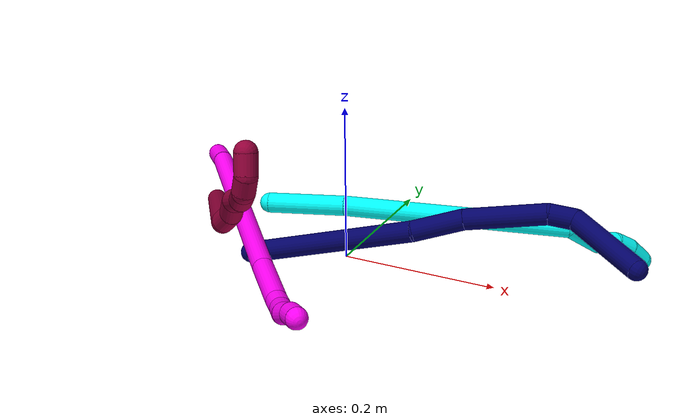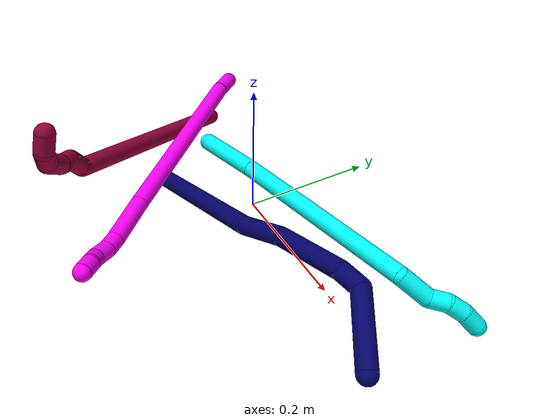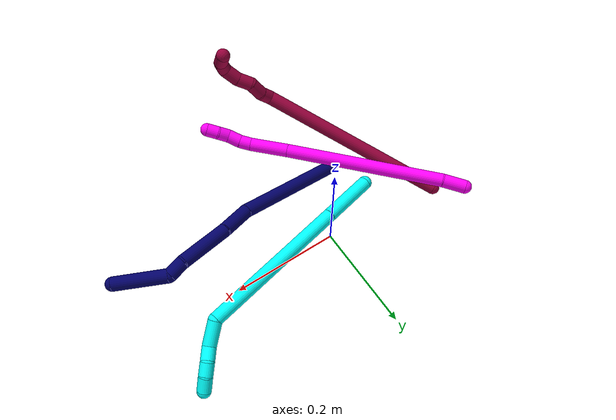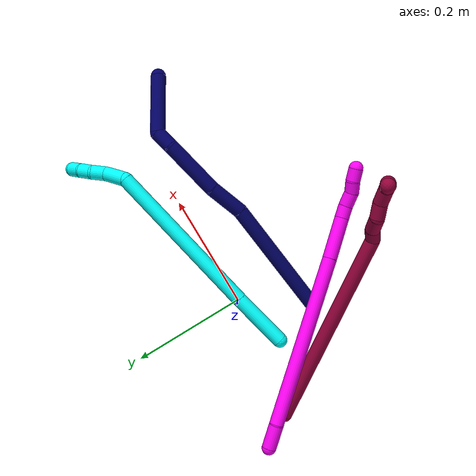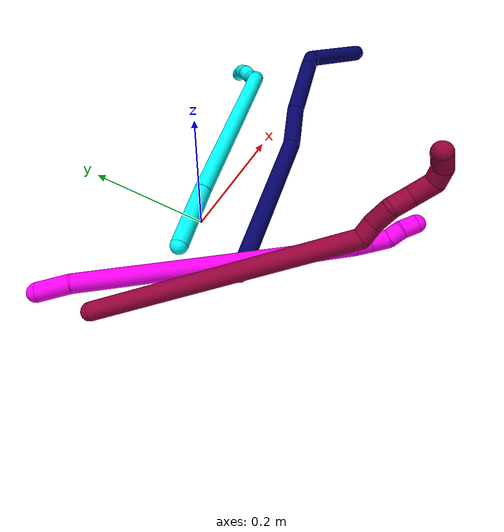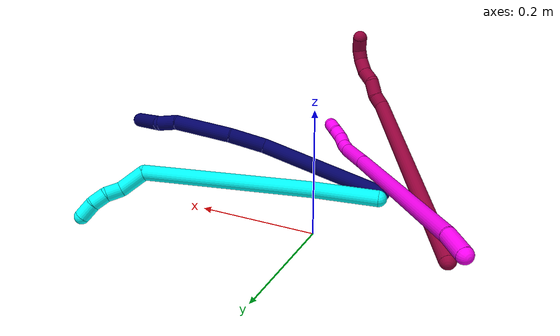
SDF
<sdf version="1.7">
 <world name="default">
  <model name="3">
   <static>0</static>
   <link name="3">
    <collision name="collision-cylinder-e_1_1_4">
     <pose>0.028717 0.012816 0.037251 -0.331357 0.629902 -0.108846</pose>
     <geometry><cylinder><radius>0.0125</radius><length>0.097499</length></cylinder></geometry>
     <surface>
      <friction><ode><mu>1.16</mu><mu2>1.16</mu2><slip1>0</slip1><slip2>0</slip2></ode></friction>
      <contact><ode><kp>1e+06</kp><kd>1</kd><max_vel>0</max_vel><min_depth>0.001</min_depth></ode></contact>
     </surface>
    </collision>
    <visual name="visual-cylinder-e_1_1_4">
     <pose>0.028717 0.012816 0.037251 -0.331357 0.629902 -0.108846</pose>
     <geometry><cylinder><radius>0.0125</radius><length>0.097499</length></cylinder></geometry>
     <material><ambient>0.003922 1 0.996078 1</ambient></material>
    </visual>
    <collision name="collision-cylinder-e_2_4_5">
     <pose>0.137496 0.068975 0.18062 -0.387766 0.609688 -0.123407</pose>
     <geometry><cylinder><radius>0.0125</radius><length>0.279641</length></cylinder></geometry>
     <surface>
      <friction><ode><mu>1.16</mu><mu2>1.16</mu2><slip1>0</slip1><slip2>0</slip2></ode></friction>
      <contact><ode><kp>1e+06</kp><kd>1</kd><max_vel>0</max_vel><min_depth>0.001</min_depth></ode></contact>
     </surface>
    </collision>
    <visual name="visual-cylinder-e_2_4_5">
     <pose>0.137496 0.068975 0.18062 -0.387766 0.609688 -0.123407</pose>
     <geometry><cylinder><radius>0.0125</radius><length>0.279641</length></cylinder></geometry>
     <material><ambient>0.003922 1 0.996078 1</ambient></material>
    </visual>
    <collision name="collision-cylinder-e_3_5_6">
     <pose>0.214493 0.122273 0.307121 -0.454287 -0.134363 0.0311</pose>
     <geometry><cylinder><radius>0.0125</radius><length>0.04578</length></cylinder></geometry>
     <surface>
      <friction><ode><mu>1.16</mu><mu2>1.16</mu2><slip1>0</slip1><slip2>0</slip2></ode></friction>
      <contact><ode><kp>1e+06</kp><kd>1</kd><max_vel>0</max_vel><min_depth>0.001</min_depth></ode></contact>
     </surface>
    </collision>
    <visual name="visual-cylinder-e_3_5_6">
     <pose>0.214493 0.122273 0.307121 -0.454287 -0.134363 0.0311</pose>
     <geometry><cylinder><radius>0.0125</radius><length>0.04578</length></cylinder></geometry>
     <material><ambient>0.003922 1 0.996078 1</ambient></material>
    </visual>
    <collision name="collision-cylinder-e_4_6_7">
     <pose>0.211336 0.132473 0.340298 -0.019214 -0.007084 6.8e-05</pose>
     <geometry><cylinder><radius>0.0125</radius><length>0.025595</length></cylinder></geometry>
     <surface>
      <friction><ode><mu>1.16</mu><mu2>1.16</mu2><slip1>0</slip1><slip2>0</slip2></ode></friction>
      <contact><ode><kp>1e+06</kp><kd>1</kd><max_vel>0</max_vel><min_depth>0.001</min_depth></ode></contact>
     </surface>
    </collision>
    <visual name="visual-cylinder-e_4_6_7">
     <pose>0.211336 0.132473 0.340298 -0.019214 -0.007084 6.8e-05</pose>
     <geometry><cylinder><radius>0.0125</radius><length>0.025595</length></cylinder></geometry>
     <material><ambient>0.003922 1 0.996078 1</ambient></material>
    </visual>
    <collision name="collision-cylinder-e_5_7_8">
     <pose>0.20909 0.136688 0.364354 -0.338872 -0.178583 0.03063</pose>
     <geometry><cylinder><radius>0.0125</radius><length>0.024266</length></cylinder></geometry>
     <surface>
      <friction><ode><mu>1.16</mu><mu2>1.16</mu2><slip1>0</slip1><slip2>0</slip2></ode></friction>
      <contact><ode><kp>1e+06</kp><kd>1</kd><max_vel>0</max_vel><min_depth>0.001</min_depth></ode></contact>
     </surface>
    </collision>
    <visual name="visual-cylinder-e_5_7_8">
     <pose>0.20909 0.136688 0.364354 -0.338872 -0.178583 0.03063</pose>
     <geometry><cylinder><radius>0.0125</radius><length>0.024266</length></cylinder></geometry>
     <material><ambient>0.003922 1 0.996078 1</ambient></material>
    </visual>
    <collision name="collision-cylinder-e_6_8_2">
     <pose>0.20262 0.147661 0.386457 -0.573592 -0.32263 0.095913</pose>
     <geometry><cylinder><radius>0.0125</radius><length>0.027219</length></cylinder></geometry>
     <surface>
      <friction><ode><mu>1.16</mu><mu2>1.16</mu2><slip1>0</slip1><slip2>0</slip2></ode></friction>
      <contact><ode><kp>1e+06</kp><kd>1</kd><max_vel>0</max_vel><min_depth>0.001</min_depth></ode></contact>
     </surface>
    </collision>
    <visual name="visual-cylinder-e_6_8_2">
     <pose>0.20262 0.147661 0.386457 -0.573592 -0.32263 0.095913</pose>
     <geometry><cylinder><radius>0.0125</radius><length>0.027219</length></cylinder></geometry>
     <material><ambient>0.003922 1 0.996078 1</ambient></material>
    </visual>
    <collision name="collision-sphere-2">
     <pose>0.198305 0.154665 0.397299 0 -0 0</pose>
     <geometry><sphere><radius>0.0125</radius></sphere></geometry>
     <surface>
      <friction><ode><mu>1.16</mu><mu2>1.16</mu2><slip1>0</slip1><slip2>0</slip2></ode></friction>
      <contact><ode><kp>1e+06</kp><kd>1</kd><max_vel>0</max_vel><min_depth>0.001</min_depth></ode></contact>
     </surface>
    </collision>
    <visual name="visual-sphere-2">
     <pose>0.198305 0.154665 0.397299 0 -0 0</pose>
     <geometry><sphere><radius>0.0125</radius></sphere></geometry>
     <material><ambient>0.003922 1 0.996078 1</ambient></material>
    </visual>
    <collision name="collision-sphere-4">
     <pose>0.057433 0.025632 0.074501 0 -0 0</pose>
     <geometry><sphere><radius>0.0125</radius></sphere></geometry>
     <surface>
      <friction><ode><mu>1.16</mu><mu2>1.16</mu2><slip1>0</slip1><slip2>0</slip2></ode></friction>
      <contact><ode><kp>1e+06</kp><kd>1</kd><max_vel>0</max_vel><min_depth>0.001</min_depth></ode></contact>
     </surface>
    </collision>
    <visual name="visual-sphere-4">
     <pose>0.057433 0.025632 0.074501 0 -0 0</pose>
     <geometry><sphere><radius>0.0125</radius></sphere></geometry>
     <material><ambient>0.003922 1 0.996078 1</ambient></material>
    </visual>
    <collision name="collision-sphere-1">
     <geometry><sphere><radius>0.0125</radius></sphere></geometry>
     <surface>
      <friction><ode><mu>1.16</mu><mu2>1.16</mu2><slip1>0</slip1><slip2>0</slip2></ode></friction>
      <contact><ode><kp>1e+06</kp><kd>1</kd><max_vel>0</max_vel><min_depth>0.001</min_depth></ode></contact>
     </surface>
    </collision>
    <visual name="visual-sphere-1">
     <geometry><sphere><radius>0.0125</radius></sphere></geometry>
     <material><ambient>0.003922 1 0.996078 1</ambient></material>
    </visual>
    <collision name="collision-sphere-8">
     <pose>0.206935 0.140657 0.375615 0 -0 0</pose>
     <geometry><sphere><radius>0.0125</radius></sphere></geometry>
     <surface>
      <friction><ode><mu>1.16</mu><mu2>1.16</mu2><slip1>0</slip1><slip2>0</slip2></ode></friction>
      <contact><ode><kp>1e+06</kp><kd>1</kd><max_vel>0</max_vel><min_depth>0.001</min_depth></ode></contact>
     </surface>
    </collision>
    <visual name="visual-sphere-8">
     <pose>0.206935 0.140657 0.375615 0 -0 0</pose>
     <geometry><sphere><radius>0.0125</radius></sphere></geometry>
     <material><ambient>0.003922 1 0.996078 1</ambient></material>
    </visual>
    <collision name="collision-sphere-5">
     <pose>0.217559 0.112319 0.286738 0 -0 0</pose>
     <geometry><sphere><radius>0.0125</radius></sphere></geometry>
     <surface>
      <friction><ode><mu>1.16</mu><mu2>1.16</mu2><slip1>0</slip1><slip2>0</slip2></ode></friction>
      <contact><ode><kp>1e+06</kp><kd>1</kd><max_vel>0</max_vel><min_depth>0.001</min_depth></ode></contact>
     </surface>
    </collision>
    <visual name="visual-sphere-5">
     <pose>0.217559 0.112319 0.286738 0 -0 0</pose>
     <geometry><sphere><radius>0.0125</radius></sphere></geometry>
     <material><ambient>0.003922 1 0.996078 1</ambient></material>
    </visual>
    <collision name="collision-sphere-6">
     <pose>0.211426 0.132227 0.327503 0 -0 0</pose>
     <geometry><sphere><radius>0.0125</radius></sphere></geometry>
     <surface>
      <friction><ode><mu>1.16</mu><mu2>1.16</mu2><slip1>0</slip1><slip2>0</slip2></ode></friction>
      <contact><ode><kp>1e+06</kp><kd>1</kd><max_vel>0</max_vel><min_depth>0.001</min_depth></ode></contact>
     </surface>
    </collision>
    <visual name="visual-sphere-6">
     <pose>0.211426 0.132227 0.327503 0 -0 0</pose>
     <geometry><sphere><radius>0.0125</radius></sphere></geometry>
     <material><ambient>0.003922 1 0.996078 1</ambient></material>
    </visual>
    <collision name="collision-sphere-7">
     <pose>0.211245 0.132719 0.353093 0 -0 0</pose>
     <geometry><sphere><radius>0.0125</radius></sphere></geometry>
     <surface>
      <friction><ode><mu>1.16</mu><mu2>1.16</mu2><slip1>0</slip1><slip2>0</slip2></ode></friction>
      <contact><ode><kp>1e+06</kp><kd>1</kd><max_vel>0</max_vel><min_depth>0.001</min_depth></ode></contact>
     </surface>
    </collision>
    <visual name="visual-sphere-7">
     <pose>0.211245 0.132719 0.353093 0 -0 0</pose>
     <geometry><sphere><radius>0.0125</radius></sphere></geometry>
     <material><ambient>0.003922 1 0.996078 1</ambient></material>
    </visual>
    <inertial>
     <pose>0.134134 0.073724 0.192542 0 -0 0</pose>
     <mass>0.5</mass>
     <inertia>
      <ixx>0.001397</ixx>
      <ixy>0</ixy>
      <ixz>0</ixz>
      <iyy>0.001647</iyy>
      <iyz>0</iyz>
      <izz>-0.00166</izz>
     </inertia>
    </inertial>
   </link>
   <pose>-0.093141 -0.02771 0.068422 -1.76573 -0.667259 -0.538743</pose>
  </model>
  <model name="7">
   <static>0</static>
   <link name="7">
    <collision name="collision-cylinder-e_1_1_4">
     <pose>-0.011365 0.061956 0.085404 -0.627602 -0.107305 0.034853</pose>
     <geometry><cylinder><radius>0.0125</radius><length>0.212241</length></cylinder></geometry>
     <surface>
      <friction><ode><mu>1.16</mu><mu2>1.16</mu2><slip1>0</slip1><slip2>0</slip2></ode></friction>
      <contact><ode><kp>1e+06</kp><kd>1</kd><max_vel>0</max_vel><min_depth>0.001</min_depth></ode></contact>
     </surface>
    </collision>
    <visual name="visual-cylinder-e_1_1_4">
     <pose>-0.011365 0.061956 0.085404 -0.627602 -0.107305 0.034853</pose>
     <geometry><cylinder><radius>0.0125</radius><length>0.212241</length></cylinder></geometry>
     <material><ambient>0.003922 0 0.403922 1</ambient></material>
    </visual>
    <collision name="collision-cylinder-e_2_4_5">
     <pose>-0.02033 0.14497 0.192544 -0.769532 0.079159 -0.032069</pose>
     <geometry><cylinder><radius>0.0125</radius><length>0.060718</length></cylinder></geometry>
     <surface>
      <friction><ode><mu>1.16</mu><mu2>1.16</mu2><slip1>0</slip1><slip2>0</slip2></ode></friction>
      <contact><ode><kp>1e+06</kp><kd>1</kd><max_vel>0</max_vel><min_depth>0.001</min_depth></ode></contact>
     </surface>
    </collision>
    <visual name="visual-cylinder-e_2_4_5">
     <pose>-0.02033 0.14497 0.192544 -0.769532 0.079159 -0.032069</pose>
     <geometry><cylinder><radius>0.0125</radius><length>0.060718</length></cylinder></geometry>
     <material><ambient>0.003922 0 0.403922 1</ambient></material>
    </visual>
    <collision name="collision-cylinder-e_3_5_6">
     <pose>-0.015847 0.192996 0.254195 -0.594207 0.043216 -0.013233</pose>
     <geometry><cylinder><radius>0.0125</radius><length>0.096432</length></cylinder></geometry>
     <surface>
      <friction><ode><mu>1.16</mu><mu2>1.16</mu2><slip1>0</slip1><slip2>0</slip2></ode></friction>
      <contact><ode><kp>1e+06</kp><kd>1</kd><max_vel>0</max_vel><min_depth>0.001</min_depth></ode></contact>
     </surface>
    </collision>
    <visual name="visual-cylinder-e_3_5_6">
     <pose>-0.015847 0.192996 0.254195 -0.594207 0.043216 -0.013233</pose>
     <geometry><cylinder><radius>0.0125</radius><length>0.096432</length></cylinder></geometry>
     <material><ambient>0.003922 0 0.403922 1</ambient></material>
    </visual>
    <collision name="collision-cylinder-e_4_6_7">
     <pose>-0.010388 0.225173 0.308257 -0.352711 0.220263 -0.039407</pose>
     <geometry><cylinder><radius>0.0125</radius><length>0.030899</length></cylinder></geometry>
     <surface>
      <friction><ode><mu>1.16</mu><mu2>1.16</mu2><slip1>0</slip1><slip2>0</slip2></ode></friction>
      <contact><ode><kp>1e+06</kp><kd>1</kd><max_vel>0</max_vel><min_depth>0.001</min_depth></ode></contact>
     </surface>
    </collision>
    <visual name="visual-cylinder-e_4_6_7">
     <pose>-0.010388 0.225173 0.308257 -0.352711 0.220263 -0.039407</pose>
     <geometry><cylinder><radius>0.0125</radius><length>0.030899</length></cylinder></geometry>
     <material><ambient>0.003922 0 0.403922 1</ambient></material>
    </visual>
    <collision name="collision-cylinder-e_5_7_2">
     <pose>-0.024043 0.222137 0.368531 0.176849 -0.348627 -0.031222</pose>
     <geometry><cylinder><radius>0.0125</radius><length>0.09971</length></cylinder></geometry>
     <surface>
      <friction><ode><mu>1.16</mu><mu2>1.16</mu2><slip1>0</slip1><slip2>0</slip2></ode></friction>
      <contact><ode><kp>1e+06</kp><kd>1</kd><max_vel>0</max_vel><min_depth>0.001</min_depth></ode></contact>
     </surface>
    </collision>
    <visual name="visual-cylinder-e_5_7_2">
     <pose>-0.024043 0.222137 0.368531 0.176849 -0.348627 -0.031222</pose>
     <geometry><cylinder><radius>0.0125</radius><length>0.09971</length></cylinder></geometry>
     <material><ambient>0.003922 0 0.403922 1</ambient></material>
    </visual>
    <collision name="collision-sphere-2">
     <pose>-0.041074 0.213894 0.414656 0 -0 0</pose>
     <geometry><sphere><radius>0.0125</radius></sphere></geometry>
     <surface>
      <friction><ode><mu>1.16</mu><mu2>1.16</mu2><slip1>0</slip1><slip2>0</slip2></ode></friction>
      <contact><ode><kp>1e+06</kp><kd>1</kd><max_vel>0</max_vel><min_depth>0.001</min_depth></ode></contact>
     </surface>
    </collision>
    <visual name="visual-sphere-2">
     <pose>-0.041074 0.213894 0.414656 0 -0 0</pose>
     <geometry><sphere><radius>0.0125</radius></sphere></geometry>
     <material><ambient>0.003922 0 0.403922 1</ambient></material>
    </visual>
    <collision name="collision-sphere-7">
     <pose>-0.007013 0.23038 0.322405 0 -0 0</pose>
     <geometry><sphere><radius>0.0125</radius></sphere></geometry>
     <surface>
      <friction><ode><mu>1.16</mu><mu2>1.16</mu2><slip1>0</slip1><slip2>0</slip2></ode></friction>
      <contact><ode><kp>1e+06</kp><kd>1</kd><max_vel>0</max_vel><min_depth>0.001</min_depth></ode></contact>
     </surface>
    </collision>
    <visual name="visual-sphere-7">
     <pose>-0.007013 0.23038 0.322405 0 -0 0</pose>
     <geometry><sphere><radius>0.0125</radius></sphere></geometry>
     <material><ambient>0.003922 0 0.403922 1</ambient></material>
    </visual>
    <collision name="collision-sphere-6">
     <pose>-0.013763 0.219965 0.294109 0 -0 0</pose>
     <geometry><sphere><radius>0.0125</radius></sphere></geometry>
     <surface>
      <friction><ode><mu>1.16</mu><mu2>1.16</mu2><slip1>0</slip1><slip2>0</slip2></ode></friction>
      <contact><ode><kp>1e+06</kp><kd>1</kd><max_vel>0</max_vel><min_depth>0.001</min_depth></ode></contact>
     </surface>
    </collision>
    <visual name="visual-sphere-6">
     <pose>-0.013763 0.219965 0.294109 0 -0 0</pose>
     <geometry><sphere><radius>0.0125</radius></sphere></geometry>
     <material><ambient>0.003922 0 0.403922 1</ambient></material>
    </visual>
    <collision name="collision-sphere-5">
     <pose>-0.01793 0.166027 0.214281 0 -0 0</pose>
     <geometry><sphere><radius>0.0125</radius></sphere></geometry>
     <surface>
      <friction><ode><mu>1.16</mu><mu2>1.16</mu2><slip1>0</slip1><slip2>0</slip2></ode></friction>
      <contact><ode><kp>1e+06</kp><kd>1</kd><max_vel>0</max_vel><min_depth>0.001</min_depth></ode></contact>
     </surface>
    </collision>
    <visual name="visual-sphere-5">
     <pose>-0.01793 0.166027 0.214281 0 -0 0</pose>
     <geometry><sphere><radius>0.0125</radius></sphere></geometry>
     <material><ambient>0.003922 0 0.403922 1</ambient></material>
    </visual>
    <collision name="collision-sphere-1">
     <geometry><sphere><radius>0.0125</radius></sphere></geometry>
     <surface>
      <friction><ode><mu>1.16</mu><mu2>1.16</mu2><slip1>0</slip1><slip2>0</slip2></ode></friction>
      <contact><ode><kp>1e+06</kp><kd>1</kd><max_vel>0</max_vel><min_depth>0.001</min_depth></ode></contact>
     </surface>
    </collision>
    <visual name="visual-sphere-1">
     <geometry><sphere><radius>0.0125</radius></sphere></geometry>
     <material><ambient>0.003922 0 0.403922 1</ambient></material>
    </visual>
    <collision name="collision-sphere-4">
     <pose>-0.022731 0.123912 0.170808 0 -0 0</pose>
     <geometry><sphere><radius>0.0125</radius></sphere></geometry>
     <surface>
      <friction><ode><mu>1.16</mu><mu2>1.16</mu2><slip1>0</slip1><slip2>0</slip2></ode></friction>
      <contact><ode><kp>1e+06</kp><kd>1</kd><max_vel>0</max_vel><min_depth>0.001</min_depth></ode></contact>
     </surface>
    </collision>
    <visual name="visual-sphere-4">
     <pose>-0.022731 0.123912 0.170808 0 -0 0</pose>
     <geometry><sphere><radius>0.0125</radius></sphere></geometry>
     <material><ambient>0.003922 0 0.403922 1</ambient></material>
    </visual>
    <inertial>
     <pose>-0.015786 0.13934 0.201201 0 -0 0</pose>
     <mass>0.5</mass>
     <inertia>
      <ixx>0.001004</ixx>
      <ixy>0</ixy>
      <ixz>0</ixz>
      <iyy>0.000862</iyy>
      <iyz>0</iyz>
      <izz>-0.000373</izz>
     </inertia>
    </inertial>
   </link>
   <pose>-0.074478 -0.107711 0.038041 1.93527 0.58924 1.63742</pose>
  </model>
  <model name="8">
   <static>0</static>
   <link name="8">
    <collision name="collision-cylinder-e_1_1_4">
     <pose>0.012298 -0.061552 0.163704 0.35964 0.070201 0.012766</pose>
     <geometry><cylinder><radius>0.0125</radius><length>0.350651</length></cylinder></geometry>
     <surface>
      <friction><ode><mu>1.16</mu><mu2>1.16</mu2><slip1>0</slip1><slip2>0</slip2></ode></friction>
      <contact><ode><kp>1e+06</kp><kd>1</kd><max_vel>0</max_vel><min_depth>0.001</min_depth></ode></contact>
     </surface>
    </collision>
    <visual name="visual-cylinder-e_1_1_4">
     <pose>0.012298 -0.061552 0.163704 0.35964 0.070201 0.012766</pose>
     <geometry><cylinder><radius>0.0125</radius><length>0.350651</length></cylinder></geometry>
     <material><ambient>0.584314 0 0.227451 1</ambient></material>
    </visual>
    <collision name="collision-cylinder-e_2_4_5">
     <pose>0.028389 -0.131385 0.333299 0.952578 0.357189 0.185724</pose>
     <geometry><cylinder><radius>0.0125</radius><length>0.021696</length></cylinder></geometry>
     <surface>
      <friction><ode><mu>1.16</mu><mu2>1.16</mu2><slip1>0</slip1><slip2>0</slip2></ode></friction>
      <contact><ode><kp>1e+06</kp><kd>1</kd><max_vel>0</max_vel><min_depth>0.001</min_depth></ode></contact>
     </surface>
    </collision>
    <visual name="visual-cylinder-e_2_4_5">
     <pose>0.028389 -0.131385 0.333299 0.952578 0.357189 0.185724</pose>
     <geometry><cylinder><radius>0.0125</radius><length>0.021696</length></cylinder></geometry>
     <material><ambient>0.584314 0 0.227451 1</ambient></material>
    </visual>
    <collision name="collision-cylinder-e_3_5_6">
     <pose>0.039849 -0.147403 0.348462 0.695276 0.565728 0.209868</pose>
     <geometry><cylinder><radius>0.0125</radius><length>0.028608</length></cylinder></geometry>
     <surface>
      <friction><ode><mu>1.16</mu><mu2>1.16</mu2><slip1>0</slip1><slip2>0</slip2></ode></friction>
      <contact><ode><kp>1e+06</kp><kd>1</kd><max_vel>0</max_vel><min_depth>0.001</min_depth></ode></contact>
     </surface>
    </collision>
    <visual name="visual-cylinder-e_3_5_6">
     <pose>0.039849 -0.147403 0.348462 0.695276 0.565728 0.209868</pose>
     <geometry><cylinder><radius>0.0125</radius><length>0.028608</length></cylinder></geometry>
     <material><ambient>0.584314 0 0.227451 1</ambient></material>
    </visual>
    <collision name="collision-cylinder-e_4_6_7">
     <pose>0.048466 -0.162772 0.368306 0.625414 0.072653 0.023499</pose>
     <geometry><cylinder><radius>0.0125</radius><length>0.026147</length></cylinder></geometry>
     <surface>
      <friction><ode><mu>1.16</mu><mu2>1.16</mu2><slip1>0</slip1><slip2>0</slip2></ode></friction>
      <contact><ode><kp>1e+06</kp><kd>1</kd><max_vel>0</max_vel><min_depth>0.001</min_depth></ode></contact>
     </surface>
    </collision>
    <visual name="visual-cylinder-e_4_6_7">
     <pose>0.048466 -0.162772 0.368306 0.625414 0.072653 0.023499</pose>
     <geometry><cylinder><radius>0.0125</radius><length>0.026147</length></cylinder></geometry>
     <material><ambient>0.584314 0 0.227451 1</ambient></material>
    </visual>
    <collision name="collision-cylinder-e_5_7_8">
     <pose>0.054364 -0.17748 0.390432 0.549337 0.350227 0.09963</pose>
     <geometry><cylinder><radius>0.0125</radius><length>0.028849</length></cylinder></geometry>
     <surface>
      <friction><ode><mu>1.16</mu><mu2>1.16</mu2><slip1>0</slip1><slip2>0</slip2></ode></friction>
      <contact><ode><kp>1e+06</kp><kd>1</kd><max_vel>0</max_vel><min_depth>0.001</min_depth></ode></contact>
     </surface>
    </collision>
    <visual name="visual-cylinder-e_5_7_8">
     <pose>0.054364 -0.17748 0.390432 0.549337 0.350227 0.09963</pose>
     <geometry><cylinder><radius>0.0125</radius><length>0.028849</length></cylinder></geometry>
     <material><ambient>0.584314 0 0.227451 1</ambient></material>
    </visual>
    <collision name="collision-cylinder-e_6_8_9">
     <pose>0.067212 -0.190121 0.405077 1.06421 0.892392 0.549058</pose>
     <geometry><cylinder><radius>0.0125</radius><length>0.020291</length></cylinder></geometry>
     <surface>
      <friction><ode><mu>1.16</mu><mu2>1.16</mu2><slip1>0</slip1><slip2>0</slip2></ode></friction>
      <contact><ode><kp>1e+06</kp><kd>1</kd><max_vel>0</max_vel><min_depth>0.001</min_depth></ode></contact>
     </surface>
    </collision>
    <visual name="visual-cylinder-e_6_8_9">
     <pose>0.067212 -0.190121 0.405077 1.06421 0.892392 0.549058</pose>
     <geometry><cylinder><radius>0.0125</radius><length>0.020291</length></cylinder></geometry>
     <material><ambient>0.584314 0 0.227451 1</ambient></material>
    </visual>
    <collision name="collision-cylinder-e_7_9_2">
     <pose>0.086207 -0.199588 0.406502 1.97389 1.20579 1.61187</pose>
     <geometry><cylinder><radius>0.0125</radius><length>0.023759</length></cylinder></geometry>
     <surface>
      <friction><ode><mu>1.16</mu><mu2>1.16</mu2><slip1>0</slip1><slip2>0</slip2></ode></friction>
      <contact><ode><kp>1e+06</kp><kd>1</kd><max_vel>0</max_vel><min_depth>0.001</min_depth></ode></contact>
     </surface>
    </collision>
    <visual name="visual-cylinder-e_7_9_2">
     <pose>0.086207 -0.199588 0.406502 1.97389 1.20579 1.61187</pose>
     <geometry><cylinder><radius>0.0125</radius><length>0.023759</length></cylinder></geometry>
     <material><ambient>0.584314 0 0.227451 1</ambient></material>
    </visual>
    <collision name="collision-sphere-2">
     <pose>0.097304 -0.203489 0.404839 0 -0 0</pose>
     <geometry><sphere><radius>0.0125</radius></sphere></geometry>
     <surface>
      <friction><ode><mu>1.16</mu><mu2>1.16</mu2><slip1>0</slip1><slip2>0</slip2></ode></friction>
      <contact><ode><kp>1e+06</kp><kd>1</kd><max_vel>0</max_vel><min_depth>0.001</min_depth></ode></contact>
     </surface>
    </collision>
    <visual name="visual-sphere-2">
     <pose>0.097304 -0.203489 0.404839 0 -0 0</pose>
     <geometry><sphere><radius>0.0125</radius></sphere></geometry>
     <material><ambient>0.584314 0 0.227451 1</ambient></material>
    </visual>
    <collision name="collision-sphere-9">
     <pose>0.075111 -0.195688 0.408166 0 -0 0</pose>
     <geometry><sphere><radius>0.0125</radius></sphere></geometry>
     <surface>
      <friction><ode><mu>1.16</mu><mu2>1.16</mu2><slip1>0</slip1><slip2>0</slip2></ode></friction>
      <contact><ode><kp>1e+06</kp><kd>1</kd><max_vel>0</max_vel><min_depth>0.001</min_depth></ode></contact>
     </surface>
    </collision>
    <visual name="visual-sphere-9">
     <pose>0.075111 -0.195688 0.408166 0 -0 0</pose>
     <geometry><sphere><radius>0.0125</radius></sphere></geometry>
     <material><ambient>0.584314 0 0.227451 1</ambient></material>
    </visual>
    <collision name="collision-sphere-4">
     <pose>0.024596 -0.123103 0.327409 0 -0 0</pose>
     <geometry><sphere><radius>0.0125</radius></sphere></geometry>
     <surface>
      <friction><ode><mu>1.16</mu><mu2>1.16</mu2><slip1>0</slip1><slip2>0</slip2></ode></friction>
      <contact><ode><kp>1e+06</kp><kd>1</kd><max_vel>0</max_vel><min_depth>0.001</min_depth></ode></contact>
     </surface>
    </collision>
    <visual name="visual-sphere-4">
     <pose>0.024596 -0.123103 0.327409 0 -0 0</pose>
     <geometry><sphere><radius>0.0125</radius></sphere></geometry>
     <material><ambient>0.584314 0 0.227451 1</ambient></material>
    </visual>
    <collision name="collision-sphere-1">
     <geometry><sphere><radius>0.0125</radius></sphere></geometry>
     <surface>
      <friction><ode><mu>1.16</mu><mu2>1.16</mu2><slip1>0</slip1><slip2>0</slip2></ode></friction>
      <contact><ode><kp>1e+06</kp><kd>1</kd><max_vel>0</max_vel><min_depth>0.001</min_depth></ode></contact>
     </surface>
    </collision>
    <visual name="visual-sphere-1">
     <geometry><sphere><radius>0.0125</radius></sphere></geometry>
     <material><ambient>0.584314 0 0.227451 1</ambient></material>
    </visual>
    <collision name="collision-sphere-8">
     <pose>0.059313 -0.184554 0.401988 0 -0 0</pose>
     <geometry><sphere><radius>0.0125</radius></sphere></geometry>
     <surface>
      <friction><ode><mu>1.16</mu><mu2>1.16</mu2><slip1>0</slip1><slip2>0</slip2></ode></friction>
      <contact><ode><kp>1e+06</kp><kd>1</kd><max_vel>0</max_vel><min_depth>0.001</min_depth></ode></contact>
     </surface>
    </collision>
    <visual name="visual-sphere-8">
     <pose>0.059313 -0.184554 0.401988 0 -0 0</pose>
     <geometry><sphere><radius>0.0125</radius></sphere></geometry>
     <material><ambient>0.584314 0 0.227451 1</ambient></material>
    </visual>
    <collision name="collision-sphere-5">
     <pose>0.032182 -0.139667 0.33919 0 -0 0</pose>
     <geometry><sphere><radius>0.0125</radius></sphere></geometry>
     <surface>
      <friction><ode><mu>1.16</mu><mu2>1.16</mu2><slip1>0</slip1><slip2>0</slip2></ode></friction>
      <contact><ode><kp>1e+06</kp><kd>1</kd><max_vel>0</max_vel><min_depth>0.001</min_depth></ode></contact>
     </surface>
    </collision>
    <visual name="visual-sphere-5">
     <pose>0.032182 -0.139667 0.33919 0 -0 0</pose>
     <geometry><sphere><radius>0.0125</radius></sphere></geometry>
     <material><ambient>0.584314 0 0.227451 1</ambient></material>
    </visual>
    <collision name="collision-sphere-6">
     <pose>0.047517 -0.155139 0.357735 0 -0 0</pose>
     <geometry><sphere><radius>0.0125</radius></sphere></geometry>
     <surface>
      <friction><ode><mu>1.16</mu><mu2>1.16</mu2><slip1>0</slip1><slip2>0</slip2></ode></friction>
      <contact><ode><kp>1e+06</kp><kd>1</kd><max_vel>0</max_vel><min_depth>0.001</min_depth></ode></contact>
     </surface>
    </collision>
    <visual name="visual-sphere-6">
     <pose>0.047517 -0.155139 0.357735 0 -0 0</pose>
     <geometry><sphere><radius>0.0125</radius></sphere></geometry>
     <material><ambient>0.584314 0 0.227451 1</ambient></material>
    </visual>
    <collision name="collision-sphere-7">
     <pose>0.049415 -0.170405 0.378877 0 -0 0</pose>
     <geometry><sphere><radius>0.0125</radius></sphere></geometry>
     <surface>
      <friction><ode><mu>1.16</mu><mu2>1.16</mu2><slip1>0</slip1><slip2>0</slip2></ode></friction>
      <contact><ode><kp>1e+06</kp><kd>1</kd><max_vel>0</max_vel><min_depth>0.001</min_depth></ode></contact>
     </surface>
    </collision>
    <visual name="visual-sphere-7">
     <pose>0.049415 -0.170405 0.378877 0 -0 0</pose>
     <geometry><sphere><radius>0.0125</radius></sphere></geometry>
     <material><ambient>0.584314 0 0.227451 1</ambient></material>
    </visual>
    <inertial>
     <pose>0.024631 -0.093253 0.226748 0 -0 0</pose>
     <mass>0.5</mass>
     <inertia>
      <ixx>0.003664</ixx>
      <ixy>0</ixy>
      <ixz>0</ixz>
      <iyy>0.00342</iyy>
      <iyz>0</iyz>
      <izz>0.001046</izz>
     </inertia>
    </inertial>
   </link>
   <pose>-0.212066 0.032433 0.027258 -1.19827 -1.15902 3.07506</pose>
  </model>
  <model name="10">
   <static>0</static>
   <link name="10">
    <collision name="collision-cylinder-e_1_1_4">
     <pose>-0.002395 -0.001938 0.020673 0.093458 -0.114844 -0.005376</pose>
     <geometry><cylinder><radius>0.0125</radius><length>0.041802</length></cylinder></geometry>
     <surface>
      <friction><ode><mu>1.16</mu><mu2>1.16</mu2><slip1>0</slip1><slip2>0</slip2></ode></friction>
      <contact><ode><kp>1e+06</kp><kd>1</kd><max_vel>0</max_vel><min_depth>0.001</min_depth></ode></contact>
     </surface>
    </collision>
    <visual name="visual-cylinder-e_1_1_4">
     <pose>-0.002395 -0.001938 0.020673 0.093458 -0.114844 -0.005376</pose>
     <geometry><cylinder><radius>0.0125</radius><length>0.041802</length></cylinder></geometry>
     <material><ambient>1 0 0.964706 1</ambient></material>
    </visual>
    <collision name="collision-cylinder-e_2_4_5">
     <pose>0.006111 -0.019822 0.187817 0.108448 0.073855 0.00401</pose>
     <geometry><cylinder><radius>0.0125</radius><length>0.295479</length></cylinder></geometry>
     <surface>
      <friction><ode><mu>1.16</mu><mu2>1.16</mu2><slip1>0</slip1><slip2>0</slip2></ode></friction>
      <contact><ode><kp>1e+06</kp><kd>1</kd><max_vel>0</max_vel><min_depth>0.001</min_depth></ode></contact>
     </surface>
    </collision>
    <visual name="visual-cylinder-e_2_4_5">
     <pose>0.006111 -0.019822 0.187817 0.108448 0.073855 0.00401</pose>
     <geometry><cylinder><radius>0.0125</radius><length>0.295479</length></cylinder></geometry>
     <material><ambient>1 0 0.964706 1</ambient></material>
    </visual>
    <collision name="collision-cylinder-e_3_5_6">
     <pose>0.019935 -0.03898 0.370486 0.088452 0.080258 0.003554</pose>
     <geometry><cylinder><radius>0.0125</radius><length>0.072914</length></cylinder></geometry>
     <surface>
      <friction><ode><mu>1.16</mu><mu2>1.16</mu2><slip1>0</slip1><slip2>0</slip2></ode></friction>
      <contact><ode><kp>1e+06</kp><kd>1</kd><max_vel>0</max_vel><min_depth>0.001</min_depth></ode></contact>
     </surface>
    </collision>
    <visual name="visual-cylinder-e_3_5_6">
     <pose>0.019935 -0.03898 0.370486 0.088452 0.080258 0.003554</pose>
     <geometry><cylinder><radius>0.0125</radius><length>0.072914</length></cylinder></geometry>
     <material><ambient>1 0 0.964706 1</ambient></material>
    </visual>
    <collision name="collision-cylinder-e_4_6_7">
     <pose>0.022104 -0.043252 0.417627 0.096781 -0.068498 -0.003319</pose>
     <geometry><cylinder><radius>0.0125</radius><length>0.022042</length></cylinder></geometry>
     <surface>
      <friction><ode><mu>1.16</mu><mu2>1.16</mu2><slip1>0</slip1><slip2>0</slip2></ode></friction>
      <contact><ode><kp>1e+06</kp><kd>1</kd><max_vel>0</max_vel><min_depth>0.001</min_depth></ode></contact>
     </surface>
    </collision>
    <visual name="visual-cylinder-e_4_6_7">
     <pose>0.022104 -0.043252 0.417627 0.096781 -0.068498 -0.003319</pose>
     <geometry><cylinder><radius>0.0125</radius><length>0.022042</length></cylinder></geometry>
     <material><ambient>1 0 0.964706 1</ambient></material>
    </visual>
    <collision name="collision-cylinder-e_5_7_8">
     <pose>0.018267 -0.046761 0.440567 0.201175 -0.24667 -0.025022</pose>
     <geometry><cylinder><radius>0.0125</radius><length>0.025249</length></cylinder></geometry>
     <surface>
      <friction><ode><mu>1.16</mu><mu2>1.16</mu2><slip1>0</slip1><slip2>0</slip2></ode></friction>
      <contact><ode><kp>1e+06</kp><kd>1</kd><max_vel>0</max_vel><min_depth>0.001</min_depth></ode></contact>
     </surface>
    </collision>
    <visual name="visual-cylinder-e_5_7_8">
     <pose>0.018267 -0.046761 0.440567 0.201175 -0.24667 -0.025022</pose>
     <geometry><cylinder><radius>0.0125</radius><length>0.025249</length></cylinder></geometry>
     <material><ambient>1 0 0.964706 1</ambient></material>
    </visual>
    <collision name="collision-cylinder-e_6_8_9">
     <pose>0.010809 -0.047912 0.461792 -0.139443 -0.438904 0.03115</pose>
     <geometry><cylinder><radius>0.0125</radius><length>0.020592</length></cylinder></geometry>
     <surface>
      <friction><ode><mu>1.16</mu><mu2>1.16</mu2><slip1>0</slip1><slip2>0</slip2></ode></friction>
      <contact><ode><kp>1e+06</kp><kd>1</kd><max_vel>0</max_vel><min_depth>0.001</min_depth></ode></contact>
     </surface>
    </collision>
    <visual name="visual-cylinder-e_6_8_9">
     <pose>0.010809 -0.047912 0.461792 -0.139443 -0.438904 0.03115</pose>
     <geometry><cylinder><radius>0.0125</radius><length>0.020592</length></cylinder></geometry>
     <material><ambient>1 0 0.964706 1</ambient></material>
    </visual>
    <collision name="collision-cylinder-e_7_9_2">
     <pose>0.003962 -0.046786 0.481699 0.015869 -0.22744 -0.001813</pose>
     <geometry><cylinder><radius>0.0125</radius><length>0.021921</length></cylinder></geometry>
     <surface>
      <friction><ode><mu>1.16</mu><mu2>1.16</mu2><slip1>0</slip1><slip2>0</slip2></ode></friction>
      <contact><ode><kp>1e+06</kp><kd>1</kd><max_vel>0</max_vel><min_depth>0.001</min_depth></ode></contact>
     </surface>
    </collision>
    <visual name="visual-cylinder-e_7_9_2">
     <pose>0.003962 -0.046786 0.481699 0.015869 -0.22744 -0.001813</pose>
     <geometry><cylinder><radius>0.0125</radius><length>0.021921</length></cylinder></geometry>
     <material><ambient>1 0 0.964706 1</ambient></material>
    </visual>
    <collision name="collision-sphere-2">
     <pose>0.001491 -0.046955 0.492375 0 -0 0</pose>
     <geometry><sphere><radius>0.0125</radius></sphere></geometry>
     <surface>
      <friction><ode><mu>1.16</mu><mu2>1.16</mu2><slip1>0</slip1><slip2>0</slip2></ode></friction>
      <contact><ode><kp>1e+06</kp><kd>1</kd><max_vel>0</max_vel><min_depth>0.001</min_depth></ode></contact>
     </surface>
    </collision>
    <visual name="visual-sphere-2">
     <pose>0.001491 -0.046955 0.492375 0 -0 0</pose>
     <geometry><sphere><radius>0.0125</radius></sphere></geometry>
     <material><ambient>1 0 0.964706 1</ambient></material>
    </visual>
    <collision name="collision-sphere-9">
     <pose>0.006434 -0.046616 0.471022 0 -0 0</pose>
     <geometry><sphere><radius>0.0125</radius></sphere></geometry>
     <surface>
      <friction><ode><mu>1.16</mu><mu2>1.16</mu2><slip1>0</slip1><slip2>0</slip2></ode></friction>
      <contact><ode><kp>1e+06</kp><kd>1</kd><max_vel>0</max_vel><min_depth>0.001</min_depth></ode></contact>
     </surface>
    </collision>
    <visual name="visual-sphere-9">
     <pose>0.006434 -0.046616 0.471022 0 -0 0</pose>
     <geometry><sphere><radius>0.0125</radius></sphere></geometry>
     <material><ambient>1 0 0.964706 1</ambient></material>
    </visual>
    <collision name="collision-sphere-4">
     <pose>-0.00479 -0.003875 0.041345 0 -0 0</pose>
     <geometry><sphere><radius>0.0125</radius></sphere></geometry>
     <surface>
      <friction><ode><mu>1.16</mu><mu2>1.16</mu2><slip1>0</slip1><slip2>0</slip2></ode></friction>
      <contact><ode><kp>1e+06</kp><kd>1</kd><max_vel>0</max_vel><min_depth>0.001</min_depth></ode></contact>
     </surface>
    </collision>
    <visual name="visual-sphere-4">
     <pose>-0.00479 -0.003875 0.041345 0 -0 0</pose>
     <geometry><sphere><radius>0.0125</radius></sphere></geometry>
     <material><ambient>1 0 0.964706 1</ambient></material>
    </visual>
    <collision name="collision-sphere-1">
     <geometry><sphere><radius>0.0125</radius></sphere></geometry>
     <surface>
      <friction><ode><mu>1.16</mu><mu2>1.16</mu2><slip1>0</slip1><slip2>0</slip2></ode></friction>
      <contact><ode><kp>1e+06</kp><kd>1</kd><max_vel>0</max_vel><min_depth>0.001</min_depth></ode></contact>
     </surface>
    </collision>
    <visual name="visual-sphere-1">
     <geometry><sphere><radius>0.0125</radius></sphere></geometry>
     <material><ambient>1 0 0.964706 1</ambient></material>
    </visual>
    <collision name="collision-sphere-8">
     <pose>0.015184 -0.049207 0.452562 0 -0 0</pose>
     <geometry><sphere><radius>0.0125</radius></sphere></geometry>
     <surface>
      <friction><ode><mu>1.16</mu><mu2>1.16</mu2><slip1>0</slip1><slip2>0</slip2></ode></friction>
      <contact><ode><kp>1e+06</kp><kd>1</kd><max_vel>0</max_vel><min_depth>0.001</min_depth></ode></contact>
     </surface>
    </collision>
    <visual name="visual-sphere-8">
     <pose>0.015184 -0.049207 0.452562 0 -0 0</pose>
     <geometry><sphere><radius>0.0125</radius></sphere></geometry>
     <material><ambient>1 0 0.964706 1</ambient></material>
    </visual>
    <collision name="collision-sphere-5">
     <pose>0.017012 -0.03577 0.334288 0 -0 0</pose>
     <geometry><sphere><radius>0.0125</radius></sphere></geometry>
     <surface>
      <friction><ode><mu>1.16</mu><mu2>1.16</mu2><slip1>0</slip1><slip2>0</slip2></ode></friction>
      <contact><ode><kp>1e+06</kp><kd>1</kd><max_vel>0</max_vel><min_depth>0.001</min_depth></ode></contact>
     </surface>
    </collision>
    <visual name="visual-sphere-5">
     <pose>0.017012 -0.03577 0.334288 0 -0 0</pose>
     <geometry><sphere><radius>0.0125</radius></sphere></geometry>
     <material><ambient>1 0 0.964706 1</ambient></material>
    </visual>
    <collision name="collision-sphere-6">
     <pose>0.022858 -0.04219 0.406683 0 -0 0</pose>
     <geometry><sphere><radius>0.0125</radius></sphere></geometry>
     <surface>
      <friction><ode><mu>1.16</mu><mu2>1.16</mu2><slip1>0</slip1><slip2>0</slip2></ode></friction>
      <contact><ode><kp>1e+06</kp><kd>1</kd><max_vel>0</max_vel><min_depth>0.001</min_depth></ode></contact>
     </surface>
    </collision>
    <visual name="visual-sphere-6">
     <pose>0.022858 -0.04219 0.406683 0 -0 0</pose>
     <geometry><sphere><radius>0.0125</radius></sphere></geometry>
     <material><ambient>1 0 0.964706 1</ambient></material>
    </visual>
    <collision name="collision-sphere-7">
     <pose>0.021349 -0.044315 0.428571 0 -0 0</pose>
     <geometry><sphere><radius>0.0125</radius></sphere></geometry>
     <surface>
      <friction><ode><mu>1.16</mu><mu2>1.16</mu2><slip1>0</slip1><slip2>0</slip2></ode></friction>
      <contact><ode><kp>1e+06</kp><kd>1</kd><max_vel>0</max_vel><min_depth>0.001</min_depth></ode></contact>
     </surface>
    </collision>
    <visual name="visual-sphere-7">
     <pose>0.021349 -0.044315 0.428571 0 -0 0</pose>
     <geometry><sphere><radius>0.0125</radius></sphere></geometry>
     <material><ambient>1 0 0.964706 1</ambient></material>
    </visual>
    <inertial>
     <pose>0.008834 -0.025853 0.247544 0 -0 0</pose>
     <mass>0.5</mass>
     <inertia>
      <ixx>0.002214</ixx>
      <ixy>0</ixy>
      <ixz>0</ixz>
      <iyy>0.002204</iyy>
      <iyz>0</iyz>
      <izz>0.000116</izz>
     </inertia>
    </inertial>
   </link>
   <pose>-0.239374 0.082229 0.071002 -1.04539 1.5475 -1.7951</pose>
  </model>
 </world>
</sdf>
